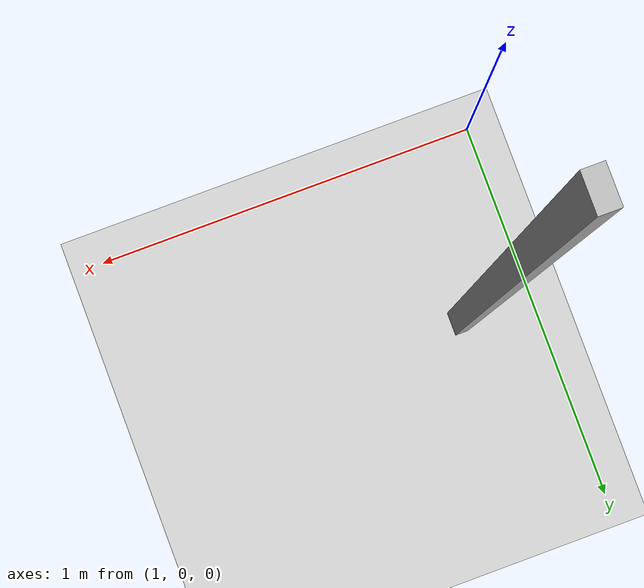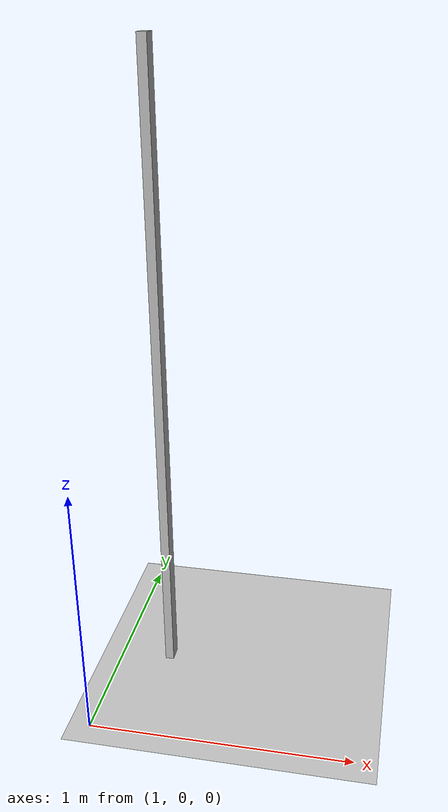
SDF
<?xml version="1.0" ?>
<sdf version="1.7">
    <world name="default">

        <!-- Physics -->
        <plugin
            filename="libignition-gazebo-physics-system.so"
            name="ignition::gazebo::systems::Physics"></plugin>
        <!-- Forwards simulation state to the GUI -->
        <plugin
            filename="libignition-gazebo-scene-broadcaster-system.so"
            name="ignition::gazebo::systems::SceneBroadcaster"></plugin>
        <!-- Processes user commands, like translate and create -->
        <plugin
            filename="libignition-gazebo-user-commands-system.so"
            name="ignition::gazebo::systems::UserCommands"></plugin>
        <!-- Generates rendering sensor data -->
        <plugin
            filename="libignition-gazebo-sensors-system.so"
            name="ignition::gazebo::systems::Sensors">
            <!-- ogre2 not working with just the MESA_GL_VERSION_OVERRIDE=3.3 trick -->
            <render_engine>ogre2</render_engine>
        </plugin>
        <plugin filename="libignition-gazebo-imu-system.so"
        		name="ignition::gazebo::systems::Imu"></plugin>

        <plugin filename="ignition-gazebo-forcetorque-system" name="ignition::gazebo::systems::ForceTorque" />

        <!--light-->
        <light type="directional" name="sun">
            <cast_shadows>true</cast_shadows>
            <pose>0 0 10 0 0 0</pose>
            <diffuse>0.8 0.8 0.8 1</diffuse>
            <specular>0.2 0.2 0.2 1</specular>
            <attenuation>
                <range>1000</range>
                <constant>0.3</constant>
                <linear>0.01</linear>
                <quadratic>0.001</quadratic>
            </attenuation>
            <direction>-0.5 0.1 -0.9</direction>
        </light>
        <!--ground_plane-->
        <model name="ground_plane">
            <static>true</static>
            <link name="link">
                <collision name="collision">
                    <geometry>
                        <plane>
                            <normal>0 0 1</normal>
                        </plane>
                    </geometry>
                </collision>
                <visual name="visual">
                    <geometry>
                        <plane>
                            <normal>0 0 1</normal>
                            <size>100 100</size>
                        </plane>
                    </geometry>
                    <material>
                        <ambient>0.8 0.8 0.8 1</ambient>
                        <diffuse>0.8 0.8 0.8 1</diffuse>
                        <specular>0.8 0.8 0.8 1</specular>
                    </material>
                </visual>
            </link>
        </model>
        <!--test box-->
        <model name='test_box'>
            <pose >1.198210 0.457375 1.2 0 -0 0</pose>
            <link name='link'>
            <inertial>
                <mass>0.2</mass>
                <inertia>
                <ixx>0.166667</ixx>
                <ixy>0</ixy>
                <ixz>0</ixz>
                <iyy>0.166667</iyy>
                <iyz>0</iyz>
                <izz>0.166667</izz>
                </inertia>
            </inertial>
            <visual name='visual'>
                <geometry>
                <box>
                    <size>0.033459 0.060847 2.4</size>
                </box>
                </geometry>
            </visual>
            <collision name='collision'>
                <pose frame=''>0 0 0 0 -0 0</pose>
                <geometry>
                <box>
                    <size>0.033459 0.060847 2.4</size>
                </box>
                </geometry>
            </collision>
            </link>
        </model>
    </world>
</sdf>
